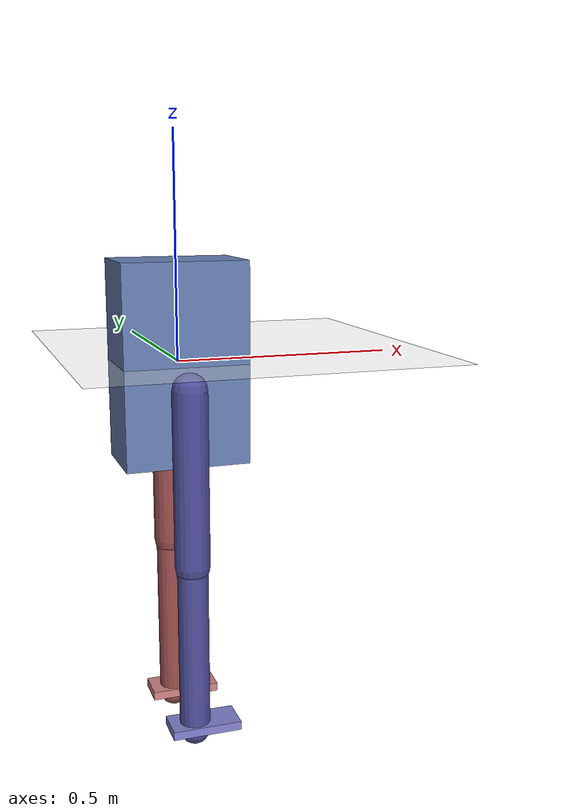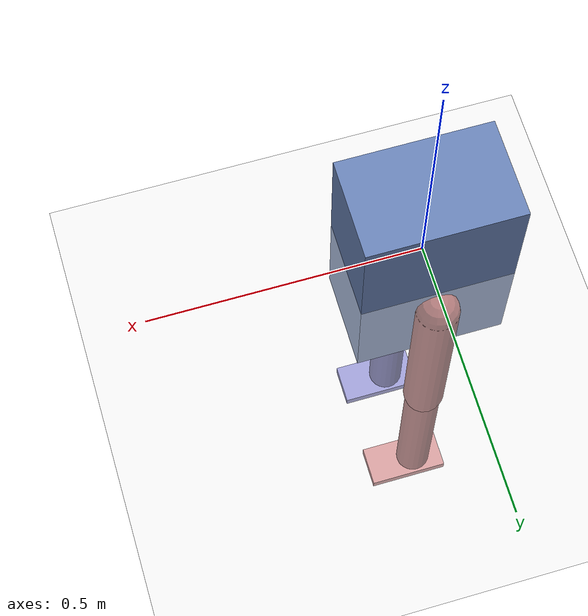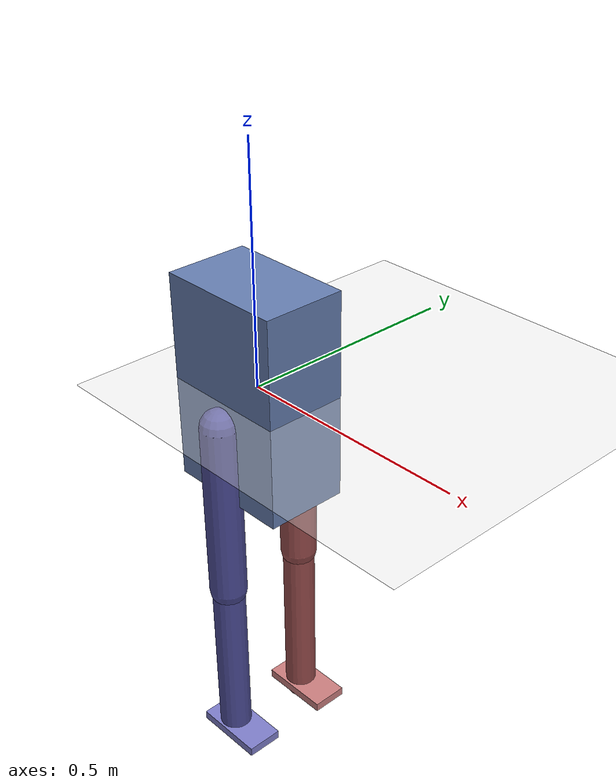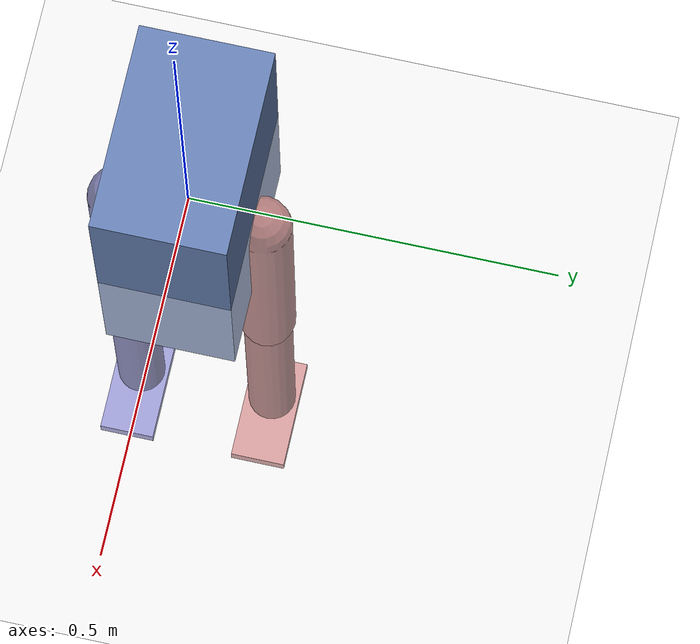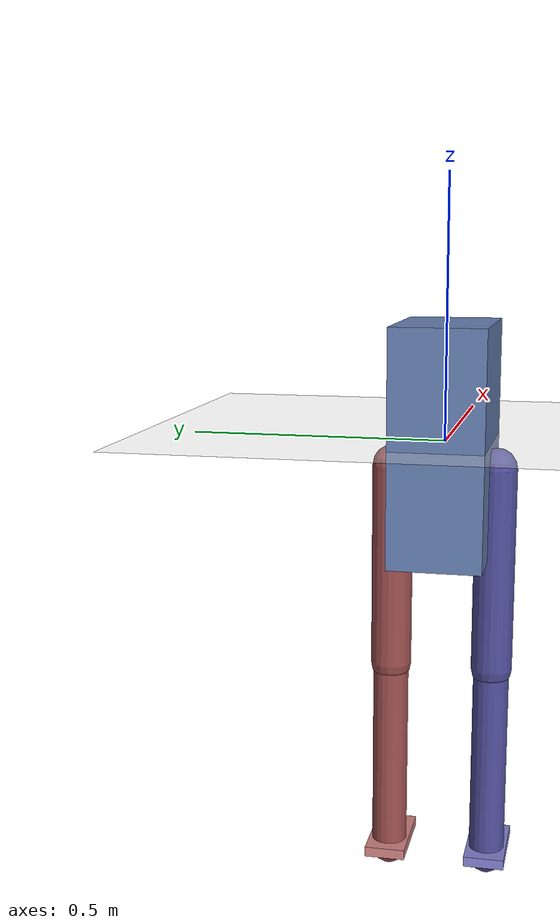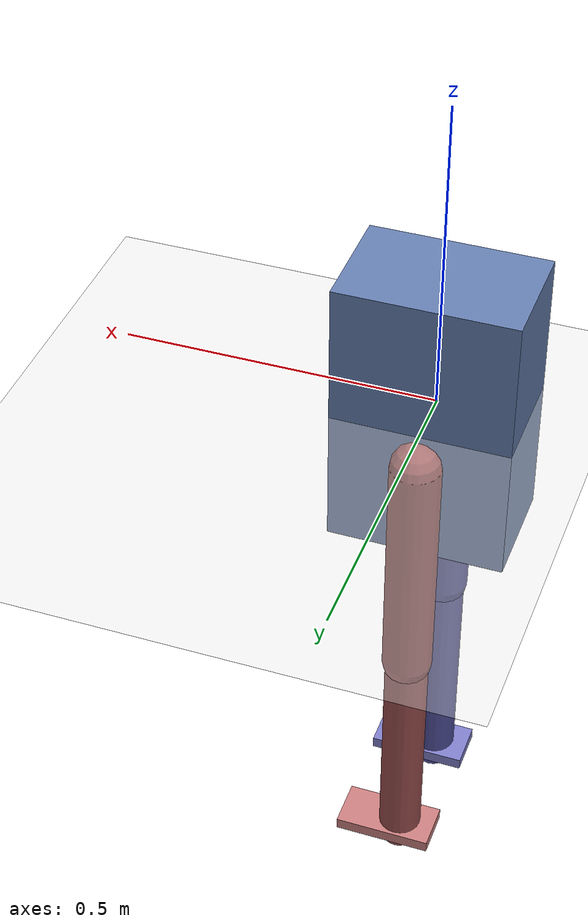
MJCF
<mujoco model="planar_biped_scene">
  <!-- Top-level scene: biped + floor + lighting. -->

  <include file="biped.xml"/>

  <visual>
    <global offwidth="1280" offheight="720"/>
    <rgba haze="0.15 0.25 0.35 1"/>
  </visual>

  <worldbody>
    <!-- Ground plane -->
    <geom name="floor" type="plane" size="20 20 0.1" rgba="0.9 0.9 0.9 1"
          condim="3" solimp="0.9 0.95 0.001" solref="0.01 1" friction="1.0 0.005 0.0001"/>
    <!-- Lighting -->
    <light name="spotlight" pos="0 -2 3" dir="0 1 -1" diffuse="0.8 0.8 0.8" specular="0.3 0.3 0.3"/>
  </worldbody>
</mujoco>

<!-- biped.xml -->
<mujoco model="planar_biped">
  <!-- Planar biped: sagittal plane (x forward, z up), hinge axes on y.
       Geometry matches robot/config.py:RobotConfig defaults.
       Total mass ~66 kg. -->

  <compiler angle="radian" autolimits="true"/>

  <option timestep="0.001" integrator="implicitfast" gravity="0 0 -9.81"/>

  <default>
    <joint damping="0.5" armature="0.01"/>
    <geom condim="3" solimp="0.9 0.95 0.001" solref="0.01 1" friction="1.0 0.005 0.0001"/>
    <motor ctrlrange="-500 500"/>
  </default>

  <worldbody>
    <!-- Pelvis: 3-DOF planar (slide x, slide z, hinge pitch).
         Body pos at origin; qpos[1] sets the actual z height. -->
    <body name="pelvis" pos="0 0 0">
      <joint name="pelvis_x" type="slide" axis="1 0 0"/>
      <joint name="pelvis_z" type="slide" axis="0 0 1"/>
      <joint name="pelvis_pitch" type="hinge" axis="0 1 0"/>
      <geom name="torso" type="box" size="0.14 0.09 0.225" mass="40" rgba="0.4 0.5 0.7 1"/>

      <!-- ========== Left leg ========== -->
      <body name="left_upper_leg" pos="0 0.10 -0.05">
        <joint name="hip_pitch_L" type="hinge" axis="0 1 0" range="-1.57 1.57"/>
        <geom name="left_thigh" type="capsule" fromto="0 0 0  0 0 -0.40" size="0.04" mass="0.5" rgba="0.6 0.3 0.3 1"/>

        <body name="left_lower_leg" pos="0 0 -0.40">
          <joint name="knee_L" type="hinge" axis="0 1 0" range="-2.5 -0.05"/>
          <geom name="left_shin" type="capsule" fromto="0 0 0  0 0 -0.40" size="0.035" mass="0.3" rgba="0.6 0.3 0.3 1"/>

          <body name="left_foot" pos="0 0 -0.40">
            <joint name="ankle_L" type="hinge" axis="0 1 0" range="-0.8 0.8"/>
            <geom name="left_foot_geom" type="box" size="0.08 0.04 0.01" pos="0.02 0 0.01" mass="0.1" rgba="0.8 0.5 0.5 1"/>
          </body>
        </body>
      </body>

      <!-- ========== Right leg ========== -->
      <body name="right_upper_leg" pos="0 -0.10 -0.05">
        <joint name="hip_pitch_R" type="hinge" axis="0 1 0" range="-1.57 1.57"/>
        <geom name="right_thigh" type="capsule" fromto="0 0 0  0 0 -0.40" size="0.04" mass="0.5" rgba="0.3 0.3 0.6 1"/>

        <body name="right_lower_leg" pos="0 0 -0.40">
          <joint name="knee_R" type="hinge" axis="0 1 0" range="-2.5 -0.05"/>
          <geom name="right_shin" type="capsule" fromto="0 0 0  0 0 -0.40" size="0.035" mass="0.3" rgba="0.3 0.3 0.6 1"/>

          <body name="right_foot" pos="0 0 -0.40">
            <joint name="ankle_R" type="hinge" axis="0 1 0" range="-0.8 0.8"/>
            <geom name="right_foot_geom" type="box" size="0.08 0.04 0.01" pos="0.02 0 0.01" mass="0.1" rgba="0.5 0.5 0.8 1"/>
          </body>
        </body>
      </body>
    </body>
  </worldbody>

  <actuator>
    <position name="hip_pitch_L_servo"  joint="hip_pitch_L"  kp="500" kv="50" ctrlrange="-1.57 1.57" forcerange="-500 500"/>
    <position name="knee_L_servo"       joint="knee_L"       kp="500" kv="50" ctrlrange="-2.5 -0.05" forcerange="-500 500"/>
    <position name="ankle_L_servo"      joint="ankle_L"      kp="300" kv="30" ctrlrange="-0.8 0.8"   forcerange="-300 300"/>
    <position name="hip_pitch_R_servo"  joint="hip_pitch_R"  kp="500" kv="50" ctrlrange="-1.57 1.57" forcerange="-500 500"/>
    <position name="knee_R_servo"       joint="knee_R"       kp="500" kv="50" ctrlrange="-2.5 -0.05" forcerange="-500 500"/>
    <position name="ankle_R_servo"      joint="ankle_R"      kp="300" kv="30" ctrlrange="-0.8 0.8"   forcerange="-300 300"/>
  </actuator>
</mujoco>
